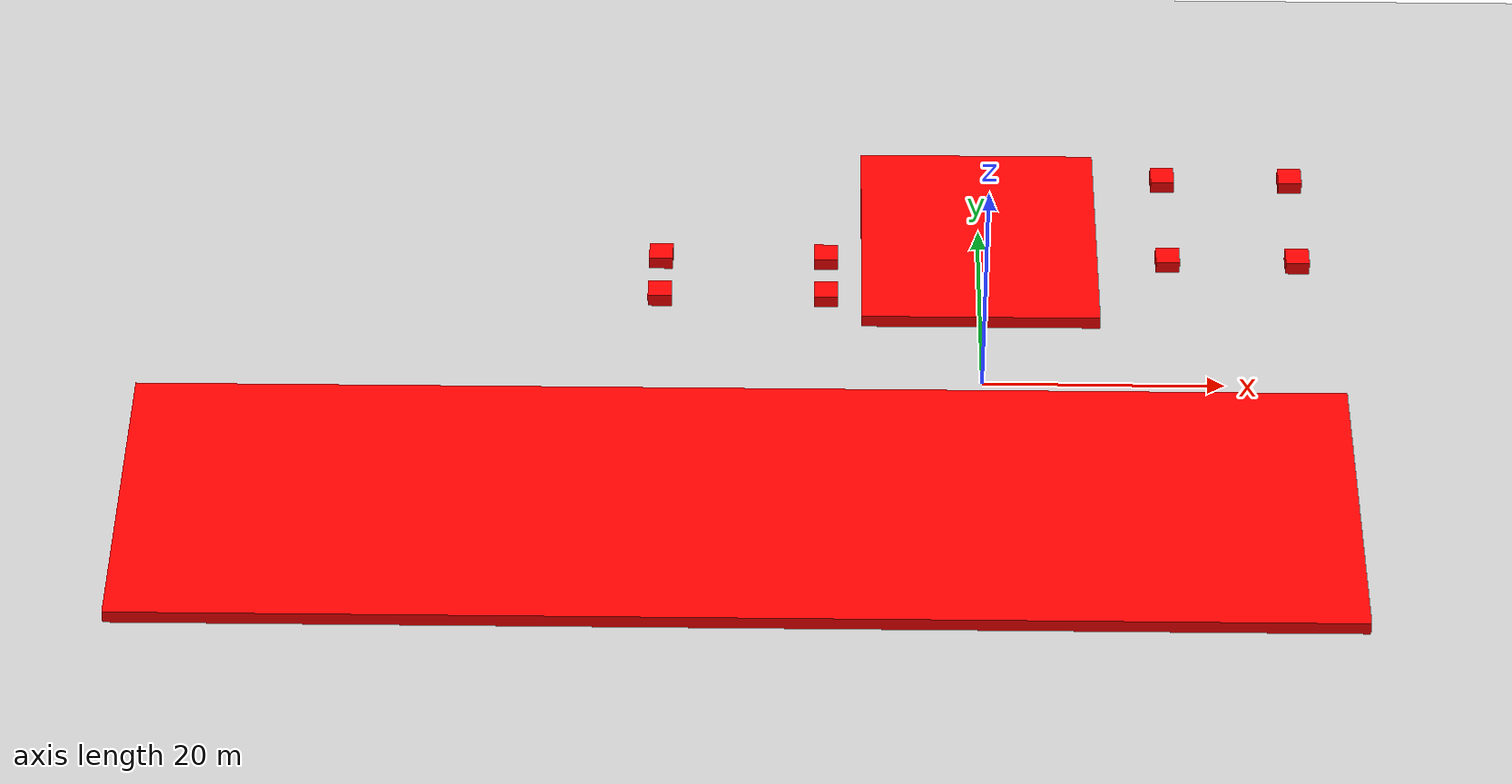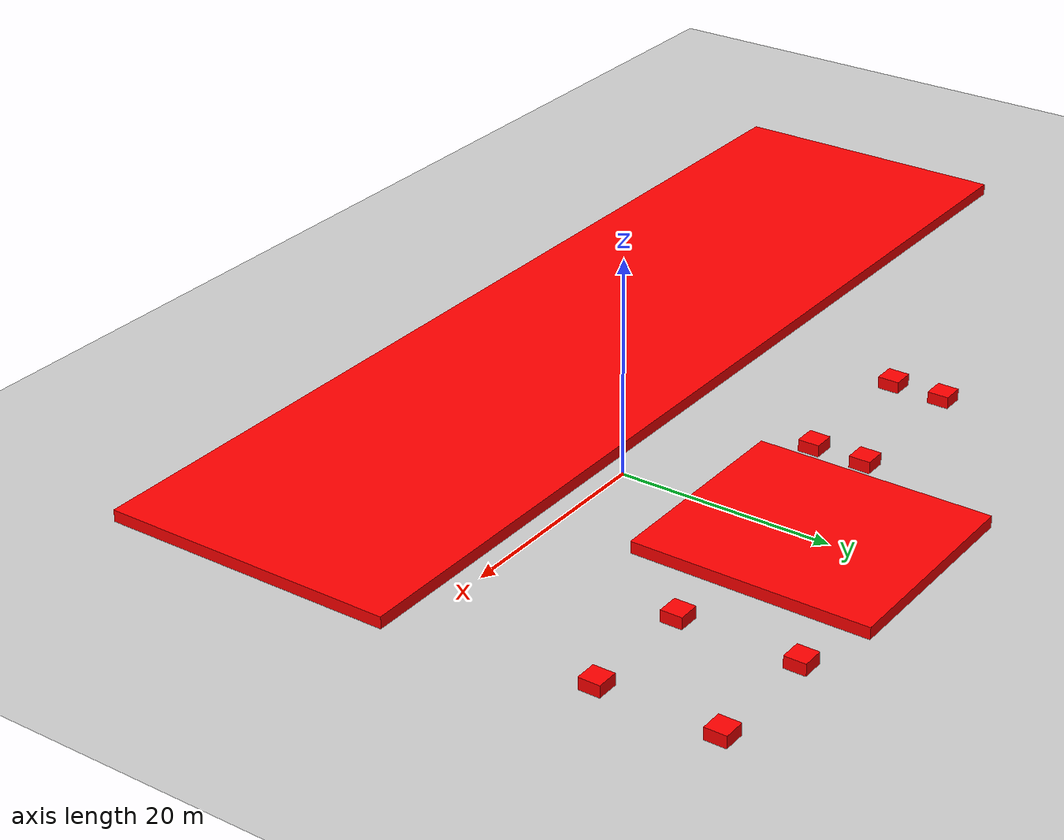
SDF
<sdf version="1.7">
 <world name="default">
  <light name="sun" type="directional">
   <pose>0 0 10 0 -0 0</pose>
   <diffuse>0.8 0.8 0.8 1</diffuse>
   <specular>0.2 0.2 0.2 1</specular>
   <attenuation>
    <range>1000</range>
    <constant>0.9</constant>
    <linear>0.01</linear>
    <quadratic>0.001</quadratic>
   </attenuation>
   <direction>-0.5 0.1 -0.9</direction>
   <spot><inner_angle>0</inner_angle><outer_angle>0</outer_angle><falloff>0</falloff></spot>
  </light>
  <model name="ground_plane">
   <static>1</static>
   <link name="link">
    <collision name="collision">
     <geometry><plane><normal>0 0 1</normal><size>100 100</size></plane></geometry>
     <surface>
      <contact><collide_bitmask>65535</collide_bitmask></contact>
      <friction><ode><mu>100</mu><mu2>50</mu2></ode></friction>
     </surface>
    </collision>
    <visual name="visual">
     <cast_shadows>0</cast_shadows>
     <geometry><plane><normal>0 0 1</normal><size>100 100</size></plane></geometry>
     <material>
      <script><uri>file://media/materials/scripts/gazebo.material</uri><name>Gazebo/Grey</name></script>
     </material>
    </visual>
   </link>
  </model>
  <gravity>0 0 -9.8</gravity>
  <magnetic_field>6e-06 2.3e-05 -4.2e-05</magnetic_field>
  <atmosphere type="adiabatic"/>
  <physics type="ode">
   <max_step_size>0.001</max_step_size>
   <real_time_factor>1</real_time_factor>
   <real_time_update_rate>1000</real_time_update_rate>
  </physics>
  <scene><ambient>0.4 0.4 0.4 1</ambient><background>0.7 0.7 0.7 1</background><shadows>1</shadows></scene>
  <spherical_coordinates>
   <surface_model>EARTH_WGS84</surface_model>
   <latitude_deg>0</latitude_deg>
   <longitude_deg>0</longitude_deg>
   <elevation>0</elevation>
   <heading_deg>0</heading_deg>
  </spherical_coordinates>
  <model name="small">
   <link name="link_1">
    <inertial>
     <mass>1</mass>
     <inertia>
      <ixx>0.166667</ixx>
      <ixy>0</ixy>
      <ixz>0</ixz>
      <iyy>0.166667</iyy>
      <iyz>0</iyz>
      <izz>0.166667</izz>
     </inertia>
    </inertial>
    <visual name="visual">
     <geometry><box><size>2 2 2</size></box></geometry>
     <material>
      <lighting>1</lighting>
      <script><uri>file://media/materials/scripts/gazebo.material</uri><name>Gazebo/Grey</name></script>
      <shader type="pixel"><normal_map>__default__</normal_map></shader>
      <ambient>0.3 0.3 0.3 1</ambient>
      <diffuse>1 0 0 1</diffuse>
      <specular>0.01 0.01 0.01 1</specular>
      <emissive>0 0 0 1</emissive>
     </material>
    </visual>
    <collision name="collision">
     <geometry><box><size>1 1 1</size></box></geometry>
     <surface>
      <friction>
       <ode><mu>1</mu><mu2>1</mu2><fdir1>0 0 0</fdir1><slip1>0</slip1><slip2>0</slip2></ode>
       <torsional>
        <coefficient>1</coefficient>
        <patch_radius>0</patch_radius>
        <surface_radius>0</surface_radius>
        <use_patch_radius>1</use_patch_radius>
        <ode><slip>0</slip></ode>
       </torsional>
      </friction>
      <bounce><restitution_coefficient>0</restitution_coefficient><threshold>1e+06</threshold></bounce>
      <contact>
       <collide_without_contact>0</collide_without_contact>
       <collide_without_contact_bitmask>1</collide_without_contact_bitmask>
       <collide_bitmask>1</collide_bitmask>
       <ode>
        <soft_cfm>0</soft_cfm>
        <soft_erp>0.2</soft_erp>
        <kp>1e+13</kp>
        <kd>1</kd>
        <max_vel>0.01</max_vel>
        <min_depth>0</min_depth>
       </ode>
       <bullet>
        <split_impulse>1</split_impulse>
        <split_impulse_penetration_threshold>-0.01</split_impulse_penetration_threshold>
        <soft_cfm>0</soft_cfm>
        <soft_erp>0.2</soft_erp>
        <kp>1e+13</kp>
        <kd>1</kd>
       </bullet>
      </contact>
     </surface>
    </collision>
   </link>
   <static>0</static>
   <pose>-13 16 0 0 -0 0</pose>
  </model>
  <model name="big">
   <link name="link_2">
    <inertial>
     <mass>1</mass>
     <inertia>
      <ixx>0.166667</ixx>
      <ixy>0</ixy>
      <ixz>0</ixz>
      <iyy>0.166667</iyy>
      <iyz>0</iyz>
      <izz>0.166667</izz>
     </inertia>
    </inertial>
    <visual name="visual">
     <geometry><box><size>100 28 2</size></box></geometry>
     <material>
      <lighting>1</lighting>
      <script><uri>file://media/materials/scripts/gazebo.material</uri><name>Gazebo/Grey</name></script>
      <shader type="pixel"><normal_map>__default__</normal_map></shader>
      <ambient>0.3 0.3 0.3 1</ambient>
      <diffuse>1 0 0 1</diffuse>
      <specular>0.01 0.01 0.01 1</specular>
      <emissive>0 0 0 1</emissive>
     </material>
    </visual>
    <collision name="collision">
     <geometry><box><size>1 1 1</size></box></geometry>
     <surface>
      <friction>
       <ode><mu>1</mu><mu2>1</mu2><fdir1>0 0 0</fdir1><slip1>0</slip1><slip2>0</slip2></ode>
       <torsional>
        <coefficient>1</coefficient>
        <patch_radius>0</patch_radius>
        <surface_radius>0</surface_radius>
        <use_patch_radius>1</use_patch_radius>
        <ode><slip>0</slip></ode>
       </torsional>
      </friction>
      <bounce><restitution_coefficient>0</restitution_coefficient><threshold>1e+06</threshold></bounce>
      <contact>
       <collide_without_contact>0</collide_without_contact>
       <collide_without_contact_bitmask>1</collide_without_contact_bitmask>
       <collide_bitmask>1</collide_bitmask>
       <ode>
        <soft_cfm>0</soft_cfm>
        <soft_erp>0.2</soft_erp>
        <kp>1e+13</kp>
        <kd>1</kd>
        <max_vel>0.01</max_vel>
        <min_depth>0</min_depth>
       </ode>
       <bullet>
        <split_impulse>1</split_impulse>
        <split_impulse_penetration_threshold>-0.01</split_impulse_penetration_threshold>
        <soft_cfm>0</soft_cfm>
        <soft_erp>0.2</soft_erp>
        <kp>1e+13</kp>
        <kd>1</kd>
       </bullet>
      </contact>
     </surface>
    </collision>
   </link>
   <static>0</static>
   <pose>-20 -16 0 0 -0 0</pose>
  </model>
  <model name="middle">
   <link name="link_3">
    <inertial>
     <mass>1</mass>
     <inertia>
      <ixx>0.166667</ixx>
      <ixy>0</ixy>
      <ixz>0</ixz>
      <iyy>0.166667</iyy>
      <iyz>0</iyz>
      <izz>0.166667</izz>
     </inertia>
    </inertial>
    <pose>0 -1e-06 0 0 -0 0</pose>
    <visual name="visual">
     <geometry><box><size>20 22 2</size></box></geometry>
     <material>
      <lighting>1</lighting>
      <script><uri>file://media/materials/scripts/gazebo.material</uri><name>Gazebo/Grey</name></script>
      <shader type="pixel"><normal_map>__default__</normal_map></shader>
      <ambient>0.3 0.3 0.3 1</ambient>
      <diffuse>1 0 0 1</diffuse>
      <specular>0.01 0.01 0.01 1</specular>
      <emissive>0 0 0 1</emissive>
     </material>
    </visual>
    <collision name="collision">
     <geometry><box><size>1 1 1</size></box></geometry>
     <surface>
      <friction>
       <ode><mu>1</mu><mu2>1</mu2><fdir1>0 0 0</fdir1><slip1>0</slip1><slip2>0</slip2></ode>
       <torsional>
        <coefficient>1</coefficient>
        <patch_radius>0</patch_radius>
        <surface_radius>0</surface_radius>
        <use_patch_radius>1</use_patch_radius>
        <ode><slip>0</slip></ode>
       </torsional>
      </friction>
      <bounce><restitution_coefficient>0</restitution_coefficient><threshold>1e+06</threshold></bounce>
      <contact>
       <collide_without_contact>0</collide_without_contact>
       <collide_without_contact_bitmask>1</collide_without_contact_bitmask>
       <collide_bitmask>1</collide_bitmask>
       <ode>
        <soft_cfm>0</soft_cfm>
        <soft_erp>0.2</soft_erp>
        <kp>1e+13</kp>
        <kd>1</kd>
        <max_vel>0.01</max_vel>
        <min_depth>0</min_depth>
       </ode>
       <bullet>
        <split_impulse>1</split_impulse>
        <split_impulse_penetration_threshold>-0.01</split_impulse_penetration_threshold>
        <soft_cfm>0</soft_cfm>
        <soft_erp>0.2</soft_erp>
        <kp>1e+13</kp>
        <kd>1</kd>
       </bullet>
      </contact>
     </surface>
    </collision>
   </link>
   <static>0</static>
   <pose>0 18.5 0 0 -0 0</pose>
  </model>
  <model name="small_clone">
   <link name="link_1">
    <inertial>
     <mass>1</mass>
     <inertia>
      <ixx>0.166667</ixx>
      <ixy>0</ixy>
      <ixz>0</ixz>
      <iyy>0.166667</iyy>
      <iyz>0</iyz>
      <izz>0.166667</izz>
     </inertia>
    </inertial>
    <visual name="visual">
     <geometry><box><size>2 2 2</size></box></geometry>
     <material>
      <lighting>1</lighting>
      <script><uri>file://media/materials/scripts/gazebo.material</uri><name>Gazebo/Grey</name></script>
      <shader type="pixel"><normal_map>__default__</normal_map></shader>
      <ambient>0.3 0.3 0.3 1</ambient>
      <diffuse>1 0 0 1</diffuse>
      <specular>0.01 0.01 0.01 1</specular>
      <emissive>0 0 0 1</emissive>
     </material>
    </visual>
    <collision name="collision">
     <geometry><box><size>1 1 1</size></box></geometry>
     <surface>
      <friction>
       <ode><mu>1</mu><mu2>1</mu2><fdir1>0 0 0</fdir1><slip1>0</slip1><slip2>0</slip2></ode>
       <torsional>
        <coefficient>1</coefficient>
        <patch_radius>0</patch_radius>
        <surface_radius>0</surface_radius>
        <use_patch_radius>1</use_patch_radius>
        <ode><slip>0</slip></ode>
       </torsional>
      </friction>
      <bounce><restitution_coefficient>0</restitution_coefficient><threshold>1e+06</threshold></bounce>
      <contact>
       <collide_without_contact>0</collide_without_contact>
       <collide_without_contact_bitmask>1</collide_without_contact_bitmask>
       <collide_bitmask>1</collide_bitmask>
       <ode>
        <soft_cfm>0</soft_cfm>
        <soft_erp>0.2</soft_erp>
        <kp>1e+13</kp>
        <kd>1</kd>
        <max_vel>0.01</max_vel>
        <min_depth>0</min_depth>
       </ode>
       <bullet>
        <split_impulse>1</split_impulse>
        <split_impulse_penetration_threshold>-0.01</split_impulse_penetration_threshold>
        <soft_cfm>0</soft_cfm>
        <soft_erp>0.2</soft_erp>
        <kp>1e+13</kp>
        <kd>1</kd>
       </bullet>
      </contact>
     </surface>
    </collision>
   </link>
   <static>0</static>
   <pose>-13 11 0 0 -0 0</pose>
  </model>
  <model name="small_clone_0">
   <link name="link_1">
    <inertial>
     <mass>1</mass>
     <inertia>
      <ixx>0.166667</ixx>
      <ixy>0</ixy>
      <ixz>0</ixz>
      <iyy>0.166667</iyy>
      <iyz>0</iyz>
      <izz>0.166667</izz>
     </inertia>
    </inertial>
    <visual name="visual">
     <geometry><box><size>2 2 2</size></box></geometry>
     <material>
      <lighting>1</lighting>
      <script><uri>file://media/materials/scripts/gazebo.material</uri><name>Gazebo/Grey</name></script>
      <shader type="pixel"><normal_map>__default__</normal_map></shader>
      <ambient>0.3 0.3 0.3 1</ambient>
      <diffuse>1 0 0 1</diffuse>
      <specular>0.01 0.01 0.01 1</specular>
      <emissive>0 0 0 1</emissive>
     </material>
    </visual>
    <collision name="collision">
     <geometry><box><size>1 1 1</size></box></geometry>
     <surface>
      <friction>
       <ode><mu>1</mu><mu2>1</mu2><fdir1>0 0 0</fdir1><slip1>0</slip1><slip2>0</slip2></ode>
       <torsional>
        <coefficient>1</coefficient>
        <patch_radius>0</patch_radius>
        <surface_radius>0</surface_radius>
        <use_patch_radius>1</use_patch_radius>
        <ode><slip>0</slip></ode>
       </torsional>
      </friction>
      <bounce><restitution_coefficient>0</restitution_coefficient><threshold>1e+06</threshold></bounce>
      <contact>
       <collide_without_contact>0</collide_without_contact>
       <collide_without_contact_bitmask>1</collide_without_contact_bitmask>
       <collide_bitmask>1</collide_bitmask>
       <ode>
        <soft_cfm>0</soft_cfm>
        <soft_erp>0.2</soft_erp>
        <kp>1e+13</kp>
        <kd>1</kd>
        <max_vel>0.01</max_vel>
        <min_depth>0</min_depth>
       </ode>
       <bullet>
        <split_impulse>1</split_impulse>
        <split_impulse_penetration_threshold>-0.01</split_impulse_penetration_threshold>
        <soft_cfm>0</soft_cfm>
        <soft_erp>0.2</soft_erp>
        <kp>1e+13</kp>
        <kd>1</kd>
       </bullet>
      </contact>
     </surface>
    </collision>
   </link>
   <static>0</static>
   <pose>-27 16 0 0 -0 0</pose>
  </model>
  <model name="small_clone_1">
   <link name="link_1">
    <inertial>
     <mass>1</mass>
     <inertia>
      <ixx>0.166667</ixx>
      <ixy>0</ixy>
      <ixz>0</ixz>
      <iyy>0.166667</iyy>
      <iyz>0</iyz>
      <izz>0.166667</izz>
     </inertia>
    </inertial>
    <visual name="visual">
     <geometry><box><size>2 2 2</size></box></geometry>
     <material>
      <lighting>1</lighting>
      <script><uri>file://media/materials/scripts/gazebo.material</uri><name>Gazebo/Grey</name></script>
      <shader type="pixel"><normal_map>__default__</normal_map></shader>
      <ambient>0.3 0.3 0.3 1</ambient>
      <diffuse>1 0 0 1</diffuse>
      <specular>0.01 0.01 0.01 1</specular>
      <emissive>0 0 0 1</emissive>
     </material>
    </visual>
    <collision name="collision">
     <geometry><box><size>1 1 1</size></box></geometry>
     <surface>
      <friction>
       <ode><mu>1</mu><mu2>1</mu2><fdir1>0 0 0</fdir1><slip1>0</slip1><slip2>0</slip2></ode>
       <torsional>
        <coefficient>1</coefficient>
        <patch_radius>0</patch_radius>
        <surface_radius>0</surface_radius>
        <use_patch_radius>1</use_patch_radius>
        <ode><slip>0</slip></ode>
       </torsional>
      </friction>
      <bounce><restitution_coefficient>0</restitution_coefficient><threshold>1e+06</threshold></bounce>
      <contact>
       <collide_without_contact>0</collide_without_contact>
       <collide_without_contact_bitmask>1</collide_without_contact_bitmask>
       <collide_bitmask>1</collide_bitmask>
       <ode>
        <soft_cfm>0</soft_cfm>
        <soft_erp>0.2</soft_erp>
        <kp>1e+13</kp>
        <kd>1</kd>
        <max_vel>0.01</max_vel>
        <min_depth>0</min_depth>
       </ode>
       <bullet>
        <split_impulse>1</split_impulse>
        <split_impulse_penetration_threshold>-0.01</split_impulse_penetration_threshold>
        <soft_cfm>0</soft_cfm>
        <soft_erp>0.2</soft_erp>
        <kp>1e+13</kp>
        <kd>1</kd>
       </bullet>
      </contact>
     </surface>
    </collision>
   </link>
   <static>0</static>
   <pose>-27 11 0 0 -0 0</pose>
  </model>
  <model name="small_clone_clone">
   <link name="link_1">
    <inertial>
     <mass>1</mass>
     <inertia>
      <ixx>0.166667</ixx>
      <ixy>0</ixy>
      <ixz>0</ixz>
      <iyy>0.166667</iyy>
      <iyz>0</iyz>
      <izz>0.166667</izz>
     </inertia>
    </inertial>
    <visual name="visual">
     <geometry><box><size>2 2 2</size></box></geometry>
     <material>
      <lighting>1</lighting>
      <script><uri>file://media/materials/scripts/gazebo.material</uri><name>Gazebo/Grey</name></script>
      <shader type="pixel"><normal_map>__default__</normal_map></shader>
      <ambient>0.3 0.3 0.3 1</ambient>
      <diffuse>1 0 0 1</diffuse>
      <specular>0.01 0.01 0.01 1</specular>
      <emissive>0 0 0 1</emissive>
     </material>
    </visual>
    <collision name="collision">
     <geometry><box><size>1 1 1</size></box></geometry>
     <surface>
      <friction>
       <ode><mu>1</mu><mu2>1</mu2><fdir1>0 0 0</fdir1><slip1>0</slip1><slip2>0</slip2></ode>
       <torsional>
        <coefficient>1</coefficient>
        <patch_radius>0</patch_radius>
        <surface_radius>0</surface_radius>
        <use_patch_radius>1</use_patch_radius>
        <ode><slip>0</slip></ode>
       </torsional>
      </friction>
      <bounce><restitution_coefficient>0</restitution_coefficient><threshold>1e+06</threshold></bounce>
      <contact>
       <collide_without_contact>0</collide_without_contact>
       <collide_without_contact_bitmask>1</collide_without_contact_bitmask>
       <collide_bitmask>1</collide_bitmask>
       <ode>
        <soft_cfm>0</soft_cfm>
        <soft_erp>0.2</soft_erp>
        <kp>1e+13</kp>
        <kd>1</kd>
        <max_vel>0.01</max_vel>
        <min_depth>0</min_depth>
       </ode>
       <bullet>
        <split_impulse>1</split_impulse>
        <split_impulse_penetration_threshold>-0.01</split_impulse_penetration_threshold>
        <soft_cfm>0</soft_cfm>
        <soft_erp>0.2</soft_erp>
        <kp>1e+13</kp>
        <kd>1</kd>
       </bullet>
      </contact>
     </surface>
    </collision>
   </link>
   <static>0</static>
   <pose>16 16 0 0 -0 0</pose>
  </model>
  <model name="small_clone_clone_clone">
   <link name="link_1">
    <inertial>
     <mass>1</mass>
     <inertia>
      <ixx>0.166667</ixx>
      <ixy>0</ixy>
      <ixz>0</ixz>
      <iyy>0.166667</iyy>
      <iyz>0</iyz>
      <izz>0.166667</izz>
     </inertia>
    </inertial>
    <visual name="visual">
     <geometry><box><size>2 2 2</size></box></geometry>
     <material>
      <lighting>1</lighting>
      <script><uri>file://media/materials/scripts/gazebo.material</uri><name>Gazebo/Grey</name></script>
      <shader type="pixel"><normal_map>__default__</normal_map></shader>
      <ambient>0.3 0.3 0.3 1</ambient>
      <diffuse>1 0 0 1</diffuse>
      <specular>0.01 0.01 0.01 1</specular>
      <emissive>0 0 0 1</emissive>
     </material>
    </visual>
    <collision name="collision">
     <geometry><box><size>1 1 1</size></box></geometry>
     <surface>
      <friction>
       <ode><mu>1</mu><mu2>1</mu2><fdir1>0 0 0</fdir1><slip1>0</slip1><slip2>0</slip2></ode>
       <torsional>
        <coefficient>1</coefficient>
        <patch_radius>0</patch_radius>
        <surface_radius>0</surface_radius>
        <use_patch_radius>1</use_patch_radius>
        <ode><slip>0</slip></ode>
       </torsional>
      </friction>
      <bounce><restitution_coefficient>0</restitution_coefficient><threshold>1e+06</threshold></bounce>
      <contact>
       <collide_without_contact>0</collide_without_contact>
       <collide_without_contact_bitmask>1</collide_without_contact_bitmask>
       <collide_bitmask>1</collide_bitmask>
       <ode>
        <soft_cfm>0</soft_cfm>
        <soft_erp>0.2</soft_erp>
        <kp>1e+13</kp>
        <kd>1</kd>
        <max_vel>0.01</max_vel>
        <min_depth>0</min_depth>
       </ode>
       <bullet>
        <split_impulse>1</split_impulse>
        <split_impulse_penetration_threshold>-0.01</split_impulse_penetration_threshold>
        <soft_cfm>0</soft_cfm>
        <soft_erp>0.2</soft_erp>
        <kp>1e+13</kp>
        <kd>1</kd>
       </bullet>
      </contact>
     </surface>
    </collision>
   </link>
   <static>0</static>
   <pose>16 27 0 0 -0 0</pose>
  </model>
  <model name="small_clone_clone_clone_0">
   <link name="link_1">
    <inertial>
     <mass>1</mass>
     <inertia>
      <ixx>0.166667</ixx>
      <ixy>0</ixy>
      <ixz>0</ixz>
      <iyy>0.166667</iyy>
      <iyz>0</iyz>
      <izz>0.166667</izz>
     </inertia>
    </inertial>
    <visual name="visual">
     <geometry><box><size>2 2 2</size></box></geometry>
     <material>
      <lighting>1</lighting>
      <script><uri>file://media/materials/scripts/gazebo.material</uri><name>Gazebo/Grey</name></script>
      <shader type="pixel"><normal_map>__default__</normal_map></shader>
      <ambient>0.3 0.3 0.3 1</ambient>
      <diffuse>1 0 0 1</diffuse>
      <specular>0.01 0.01 0.01 1</specular>
      <emissive>0 0 0 1</emissive>
     </material>
    </visual>
    <collision name="collision">
     <geometry><box><size>1 1 1</size></box></geometry>
     <surface>
      <friction>
       <ode><mu>1</mu><mu2>1</mu2><fdir1>0 0 0</fdir1><slip1>0</slip1><slip2>0</slip2></ode>
       <torsional>
        <coefficient>1</coefficient>
        <patch_radius>0</patch_radius>
        <surface_radius>0</surface_radius>
        <use_patch_radius>1</use_patch_radius>
        <ode><slip>0</slip></ode>
       </torsional>
      </friction>
      <bounce><restitution_coefficient>0</restitution_coefficient><threshold>1e+06</threshold></bounce>
      <contact>
       <collide_without_contact>0</collide_without_contact>
       <collide_without_contact_bitmask>1</collide_without_contact_bitmask>
       <collide_bitmask>1</collide_bitmask>
       <ode>
        <soft_cfm>0</soft_cfm>
        <soft_erp>0.2</soft_erp>
        <kp>1e+13</kp>
        <kd>1</kd>
        <max_vel>0.01</max_vel>
        <min_depth>0</min_depth>
       </ode>
       <bullet>
        <split_impulse>1</split_impulse>
        <split_impulse_penetration_threshold>-0.01</split_impulse_penetration_threshold>
        <soft_cfm>0</soft_cfm>
        <soft_erp>0.2</soft_erp>
        <kp>1e+13</kp>
        <kd>1</kd>
       </bullet>
      </contact>
     </surface>
    </collision>
   </link>
   <static>0</static>
   <pose>27 16 0 0 -0 0</pose>
  </model>
  <model name="small_clone_clone_clone_1">
   <link name="link_1">
    <inertial>
     <mass>1</mass>
     <inertia>
      <ixx>0.166667</ixx>
      <ixy>0</ixy>
      <ixz>0</ixz>
      <iyy>0.166667</iyy>
      <iyz>0</iyz>
      <izz>0.166667</izz>
     </inertia>
    </inertial>
    <visual name="visual">
     <geometry><box><size>2 2 2</size></box></geometry>
     <material>
      <lighting>1</lighting>
      <script><uri>file://media/materials/scripts/gazebo.material</uri><name>Gazebo/Grey</name></script>
      <shader type="pixel"><normal_map>__default__</normal_map></shader>
      <ambient>0.3 0.3 0.3 1</ambient>
      <diffuse>1 0 0 1</diffuse>
      <specular>0.01 0.01 0.01 1</specular>
      <emissive>0 0 0 1</emissive>
     </material>
    </visual>
    <collision name="collision">
     <geometry><box><size>1 1 1</size></box></geometry>
     <surface>
      <friction>
       <ode><mu>1</mu><mu2>1</mu2><fdir1>0 0 0</fdir1><slip1>0</slip1><slip2>0</slip2></ode>
       <torsional>
        <coefficient>1</coefficient>
        <patch_radius>0</patch_radius>
        <surface_radius>0</surface_radius>
        <use_patch_radius>1</use_patch_radius>
        <ode><slip>0</slip></ode>
       </torsional>
      </friction>
      <bounce><restitution_coefficient>0</restitution_coefficient><threshold>1e+06</threshold></bounce>
      <contact>
       <collide_without_contact>0</collide_without_contact>
       <collide_without_contact_bitmask>1</collide_without_contact_bitmask>
       <collide_bitmask>1</collide_bitmask>
       <ode>
        <soft_cfm>0</soft_cfm>
        <soft_erp>0.2</soft_erp>
        <kp>1e+13</kp>
        <kd>1</kd>
        <max_vel>0.01</max_vel>
        <min_depth>0</min_depth>
       </ode>
       <bullet>
        <split_impulse>1</split_impulse>
        <split_impulse_penetration_threshold>-0.01</split_impulse_penetration_threshold>
        <soft_cfm>0</soft_cfm>
        <soft_erp>0.2</soft_erp>
        <kp>1e+13</kp>
        <kd>1</kd>
       </bullet>
      </contact>
     </surface>
    </collision>
   </link>
   <static>0</static>
   <pose>27 27 0 0 -0 0</pose>
  </model>
 </world>
</sdf>
